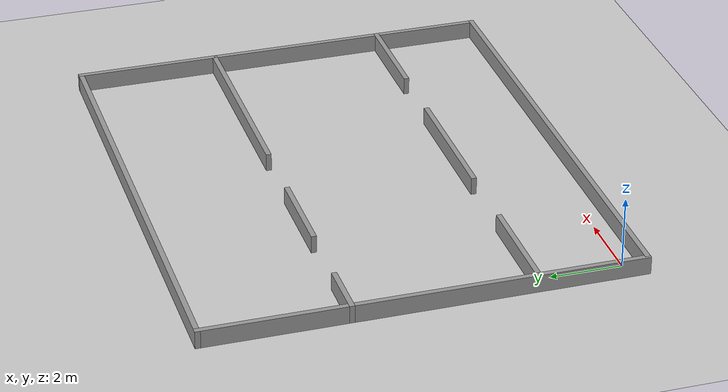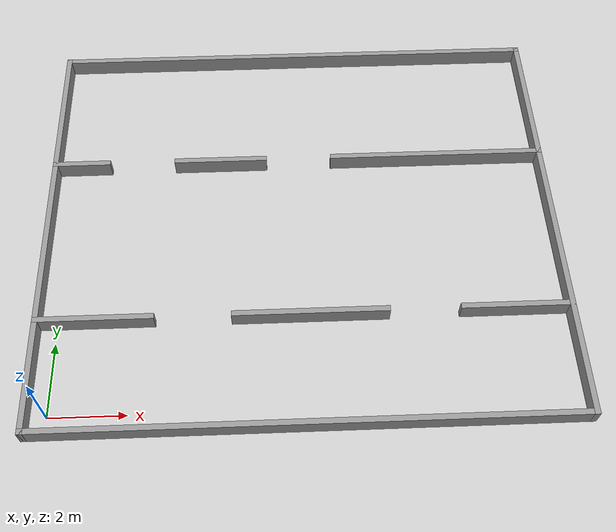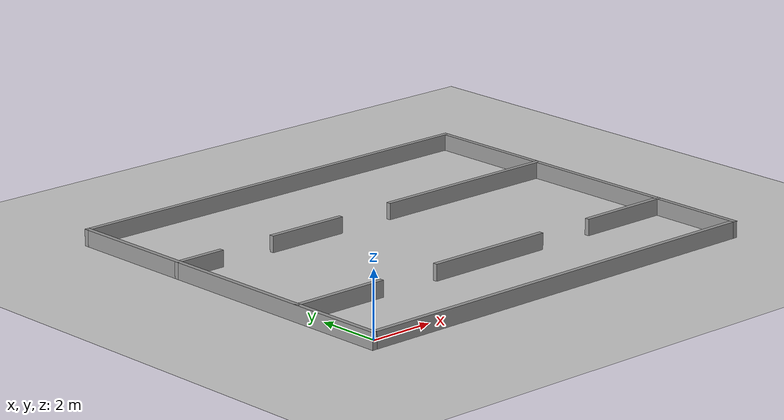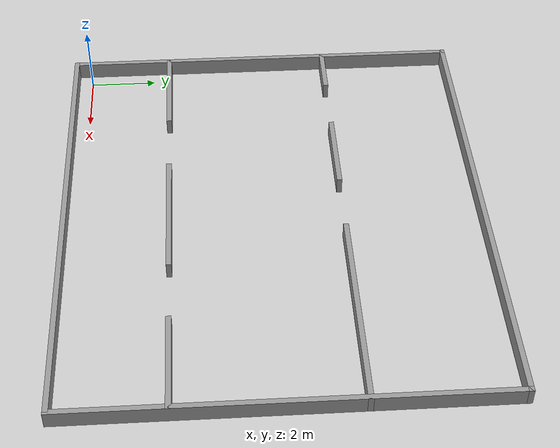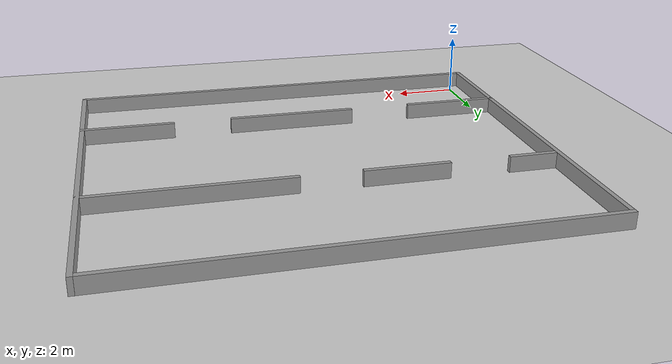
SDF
<sdf version="1.7">
 <world name="default">
  <light name="sun" type="directional">
   <cast_shadows>0</cast_shadows>
   <pose>0 0 10 0 -0 0</pose>
   <diffuse>0.8 0.8 0.8 1</diffuse>
   <specular>0.2 0.2 0.2 1</specular>
   <attenuation>
    <range>1000</range>
    <constant>0.9</constant>
    <linear>0.01</linear>
    <quadratic>0.001</quadratic>
   </attenuation>
   <direction>-0.5 0.1 -0.9</direction>
   <spot><inner_angle>0</inner_angle><outer_angle>0</outer_angle><falloff>0</falloff></spot>
  </light>
  <model name="ground_plane">
   <static>1</static>
   <link name="link">
    <collision name="collision">
     <geometry><plane><normal>0 0 1</normal><size>100 100</size></plane></geometry>
     <surface><friction><ode><mu>100</mu><mu2>50</mu2></ode></friction></surface>
    </collision>
    <visual name="visual">
     <cast_shadows>0</cast_shadows>
     <geometry><plane><normal>0 0 1</normal><size>100 100</size></plane></geometry>
     <material>
      <script><uri>file://media/materials/scripts/gazebo.material</uri><name>Gazebo/Grey</name></script>
     </material>
    </visual>
   </link>
  </model>
  <gravity>0 0 -9.8</gravity>
  <magnetic_field>6e-06 2.3e-05 -4.2e-05</magnetic_field>
  <atmosphere type="adiabatic"/>
  <physics type="ode">
   <max_step_size>0.001</max_step_size>
   <real_time_factor>1</real_time_factor>
   <real_time_update_rate>1000</real_time_update_rate>
  </physics>
  <scene><ambient>0.4 0.4 0.4 1</ambient><background>0.7 0.7 0.7 1</background><shadows>1</shadows></scene>
  <audio><device>default</device></audio>
  <spherical_coordinates>
   <surface_model>EARTH_WGS84</surface_model>
   <latitude_deg>0</latitude_deg>
   <longitude_deg>0</longitude_deg>
   <elevation>0</elevation>
   <heading_deg>0</heading_deg>
  </spherical_coordinates>
  <model name="ssy156_2024_arena">
   <pose>6.5 5.5 0 0 -0 0</pose>
   <link name="Wall_1">
    <collision name="Wall_1_Collision">
     <geometry><box><size>14.15 0.15 0.5</size></box></geometry>
     <pose>0 0 0.25 0 -0 0</pose>
    </collision>
    <visual name="Wall_1_Visual">
     <pose>0 0 0.25 0 -0 0</pose>
     <geometry><box><size>14.15 0.15 0.5</size></box></geometry>
     <material>
      <script><uri>file://media/materials/scripts/gazebo.material</uri><name>Gazebo/Grey</name></script>
      <ambient>1 1 1 1</ambient>
     </material>
     <meta><layer>0</layer></meta>
    </visual>
    <pose>0 -6 0 0 -0 0</pose>
   </link>
   <link name="Wall_10">
    <collision name="Wall_10_Collision">
     <geometry><box><size>3 0.15 0.5</size></box></geometry>
     <pose>0 0 0.25 0 -0 0</pose>
    </collision>
    <visual name="Wall_10_Visual">
     <pose>0 0 0.25 0 -0 0</pose>
     <geometry><box><size>3 0.15 0.5</size></box></geometry>
     <material>
      <script><uri>file://media/materials/scripts/gazebo.material</uri><name>Gazebo/Grey</name></script>
      <ambient>1 1 1 1</ambient>
     </material>
     <meta><layer>0</layer></meta>
    </visual>
    <pose>5.575 -3 0 0 -0 3.14159</pose>
   </link>
   <link name="Wall_12">
    <collision name="Wall_12_Collision">
     <geometry><box><size>4.15 0.15 0.5</size></box></geometry>
     <pose>0 0 0.25 0 -0 0</pose>
    </collision>
    <visual name="Wall_12_Visual">
     <pose>0 0 0.25 0 -0 0</pose>
     <geometry><box><size>4.15 0.15 0.5</size></box></geometry>
     <material>
      <script><uri>file://media/materials/scripts/gazebo.material</uri><name>Gazebo/Grey</name></script>
      <ambient>1 1 1 1</ambient>
     </material>
     <meta><layer>0</layer></meta>
    </visual>
    <pose>0.15 -3 0 0 -0 3.14159</pose>
   </link>
   <link name="Wall_14">
    <collision name="Wall_14_Collision">
     <geometry><box><size>3.15 0.15 0.5</size></box></geometry>
     <pose>0 0 0.25 0 -0 0</pose>
    </collision>
    <visual name="Wall_14_Visual">
     <pose>0 0 0.25 0 -0 0</pose>
     <geometry><box><size>3.15 0.15 0.5</size></box></geometry>
     <material>
      <script><uri>file://media/materials/scripts/gazebo.material</uri><name>Gazebo/Grey</name></script>
      <ambient>1 1 1 1</ambient>
     </material>
     <meta><layer>0</layer></meta>
    </visual>
    <pose>-5.5 -3 0 0 -0 0</pose>
   </link>
   <link name="Wall_17">
    <collision name="Wall_17_Collision">
     <geometry><box><size>6.15 0.15 0.5</size></box></geometry>
     <pose>0 0 0.25 0 -0 0</pose>
    </collision>
    <visual name="Wall_17_Visual">
     <pose>0 0 0.25 0 -0 0</pose>
     <geometry><box><size>6.15 0.15 0.5</size></box></geometry>
     <material>
      <script><uri>file://media/materials/scripts/gazebo.material</uri><name>Gazebo/Grey</name></script>
      <ambient>1 1 1 1</ambient>
     </material>
     <meta><layer>0</layer></meta>
    </visual>
    <pose>4 2 0 0 -0 3.14159</pose>
   </link>
   <link name="Wall_19">
    <collision name="Wall_19_Collision">
     <geometry><box><size>2.65 0.15 0.5</size></box></geometry>
     <pose>0 0 0.25 0 -0 0</pose>
    </collision>
    <visual name="Wall_19_Visual">
     <pose>0 0 0.25 0 -0 0</pose>
     <geometry><box><size>2.65 0.15 0.5</size></box></geometry>
     <material>
      <script><uri>file://media/materials/scripts/gazebo.material</uri><name>Gazebo/Grey</name></script>
      <ambient>1 1 1 1</ambient>
     </material>
     <meta><layer>0</layer></meta>
    </visual>
    <pose>-2.25 2 0 0 -0 3.14159</pose>
   </link>
   <link name="Wall_21">
    <collision name="Wall_21_Collision">
     <geometry><box><size>1.65 0.15 0.5</size></box></geometry>
     <pose>0 0 0.25 0 -0 0</pose>
    </collision>
    <visual name="Wall_21_Visual">
     <pose>0 0 0.25 0 -0 0</pose>
     <geometry><box><size>1.65 0.15 0.5</size></box></geometry>
     <material>
      <script><uri>file://media/materials/scripts/gazebo.material</uri><name>Gazebo/Grey</name></script>
      <ambient>1 1 1 1</ambient>
     </material>
     <meta><layer>0</layer></meta>
    </visual>
    <pose>-6.25 2 0 0 -0 3.14159</pose>
   </link>
   <link name="Wall_5">
    <collision name="Wall_5_Collision">
     <geometry><box><size>12.15 0.15 0.5</size></box></geometry>
     <pose>0 0 0.25 0 -0 0</pose>
    </collision>
    <visual name="Wall_5_Visual">
     <pose>0 0 0.25 0 -0 0</pose>
     <geometry><box><size>12.15 0.15 0.5</size></box></geometry>
     <material>
      <script><uri>file://media/materials/scripts/gazebo.material</uri><name>Gazebo/Grey</name></script>
      <ambient>1 1 1 1</ambient>
     </material>
     <meta><layer>0</layer></meta>
    </visual>
    <pose>7 0 0 0 -0 1.5708</pose>
   </link>
   <link name="Wall_7">
    <collision name="Wall_7_Collision">
     <geometry><box><size>14.15 0.15 0.5</size></box></geometry>
     <pose>0 0 0.25 0 -0 0</pose>
    </collision>
    <visual name="Wall_7_Visual">
     <pose>0 0 0.25 0 -0 0</pose>
     <geometry><box><size>14.15 0.15 0.5</size></box></geometry>
     <material>
      <script><uri>file://media/materials/scripts/gazebo.material</uri><name>Gazebo/Grey</name></script>
      <ambient>1 1 1 1</ambient>
     </material>
     <meta><layer>0</layer></meta>
    </visual>
    <pose>0 6 0 0 -0 3.14159</pose>
   </link>
   <link name="Wall_8">
    <collision name="Wall_8_Collision">
     <geometry><box><size>12.15 0.15 0.5</size></box></geometry>
     <pose>0 0 0.25 0 -0 0</pose>
    </collision>
    <visual name="Wall_8_Visual">
     <pose>0 0 0.25 0 -0 0</pose>
     <geometry><box><size>12.15 0.15 0.5</size></box></geometry>
     <material>
      <script><uri>file://media/materials/scripts/gazebo.material</uri><name>Gazebo/Grey</name></script>
      <ambient>1 1 1 1</ambient>
     </material>
     <meta><layer>0</layer></meta>
    </visual>
    <pose>-7 0 0 0 -0 -1.5708</pose>
   </link>
   <static>1</static>
  </model>
 </world>
</sdf>
